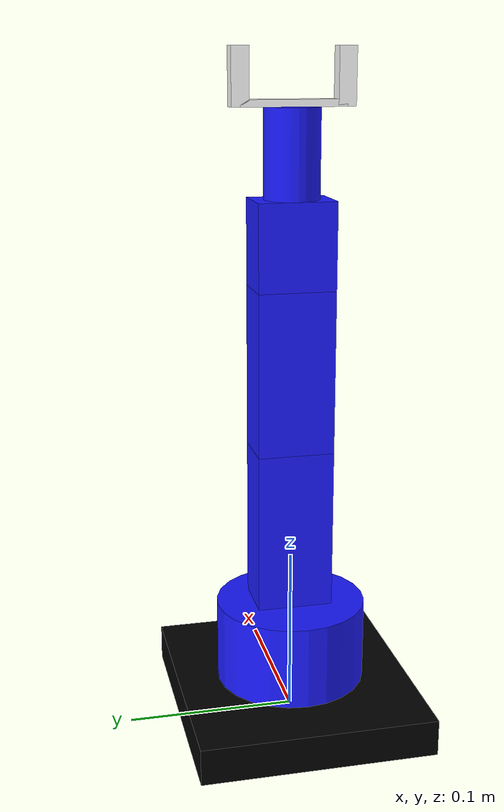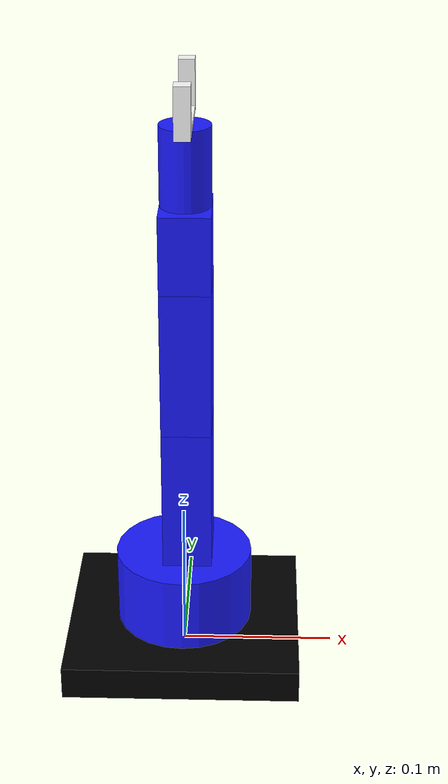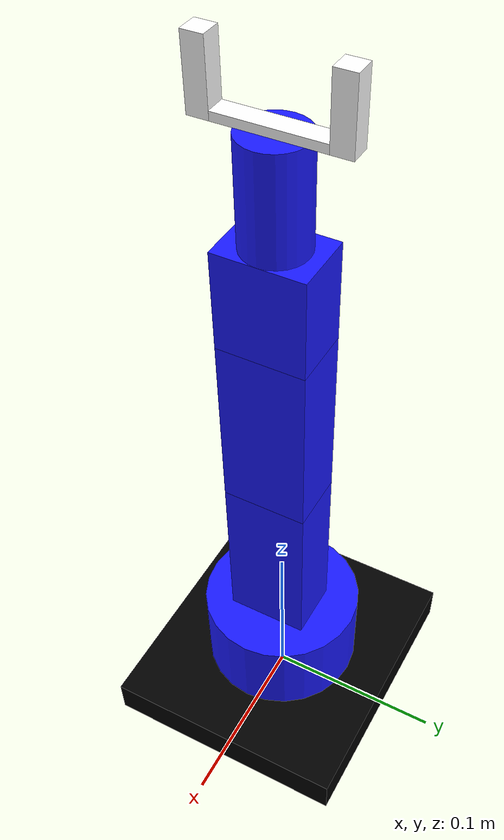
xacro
<?xml version="1.0"?>

<robot xmlns:xacro="http://www.ros.org/wiki/xacro" name="xarm">

  <!-- Define the colors used in this robot -->
  <material name="Black">
    <color rgba="0 0 0 1" />
  </material>

  <material name="White">
    <color rgba="1 1 1 1" />
  </material>

  <material name="Blue">
    <color rgba="0.1 0.1 1 1" />
  </material>

  <!-- base_link properties -->
  <xacro:property name="base_link_length" value="0.154" />
  <xacro:property name="base_link_width" value="0.14" />
  <xacro:property name="base_link_height" value="0.022" />
  <xacro:property name="base_link_geometry_origin">
    <geometry>
      <box size="${base_link_length} ${base_link_width} ${base_link_height}" />
    </geometry>
    <origin xyz="0 0 ${base_link_height/2}" rpy="0 0 0" />
  </xacro:property>

  <!-- arm_link1 properties -->
  <xacro:property name="arm_link1_length" value="0.05" />
  <xacro:property name="arm_link1_radius" value="0.045" />
  <xacro:property name="arm_link1_geometry_origin">
    <geometry>
      <cylinder length="${arm_link1_length}" radius="${arm_link1_radius}" />
    </geometry>
    <origin xyz="0 0 ${arm_link1_length/2}" rpy="0 0 0" />
  </xacro:property>

  <!-- arm_link2 properties -->
  <xacro:property name="arm_link2_length" value="0.032" />
  <xacro:property name="arm_link2_width" value="0.045" />
  <xacro:property name="arm_link2_height" value="0.096" />
  <xacro:property name="arm_link2_geometry_origin">
    <geometry>
      <box size="${arm_link2_length} ${arm_link2_width} ${arm_link2_height}" />
    </geometry>
    <origin xyz="0 0 ${arm_link2_height/2}" rpy="0 0 0" />
  </xacro:property>

  <!-- arm_link3 properties -->
  <xacro:property name="arm_link3_length" value="0.032" />
  <xacro:property name="arm_link3_width" value="0.045" />
  <xacro:property name="arm_link3_height" value="0.096" />
  <xacro:property name="arm_link3_geometry_origin">
    <geometry>
      <box size="${arm_link3_length} ${arm_link3_width} ${arm_link3_height}" />
    </geometry>
    <origin xyz="0 0 ${arm_link3_height/2}" rpy="0 0 0" />
  </xacro:property>

  <!-- arm_link4 properties -->
  <xacro:property name="arm_link4_length" value="0.032" />
  <xacro:property name="arm_link4_width" value="0.045" />
  <xacro:property name="arm_link4_height" value="0.05" />
  <xacro:property name="arm_link4_geometry_origin">
    <geometry>
      <box size="${arm_link4_length} ${arm_link4_width} ${arm_link4_height}" />
    </geometry>
    <origin rpy="0 0 0" xyz="0 0 ${arm_link4_height/2}" />
  </xacro:property>

  <!-- arm_link5 properties -->
  <xacro:property name="arm_link5_length" value="0.05" />
  <xacro:property name="arm_link5_radius" value="0.016" />
  <xacro:property name="arm_link5_geometry_origin">
    <geometry>
      <cylinder length="${arm_link5_length}" radius="${arm_link5_radius}" />
    </geometry>
    <origin xyz="0 0 ${arm_link5_length/2}" rpy="0 0 0" />
  </xacro:property>

  <!-- gripper_link properties -->
  <xacro:property name="gripper_link_length" value="0.01" />
  <xacro:property name="gripper_link_width" value="0.06" />
  <xacro:property name="gripper_link_height" value="0.004" />
  <xacro:property name="gripper_link_geometry_origin">
    <geometry>
      <box size="${gripper_link_length} ${gripper_link_width} ${gripper_link_height}" />
    </geometry>
    <origin xyz="0 0 ${gripper_link_height/2}" rpy="0 0 0" />
  </xacro:property>

  <!-- Gripper properties -->
  <xacro:property name="gripper_length" value="0.01" />
  <xacro:property name="gripper_width" value="0.01" />
  <xacro:property name="gripper_height" value="0.032" />
  <xacro:property name="gripper_geometry_origin">
    <geometry>
      <box size="${gripper_length} ${gripper_width} ${gripper_height}" />
    </geometry>
    <origin xyz="0 0 ${gripper_height/2}" rpy="0 0 0" />
  </xacro:property>

  <!--////////// BASE_LINK //////////-->
  <link name="base_link">
    <visual>
      <xacro:insert_block name="base_link_geometry_origin" />
      <material name="Black" />
    </visual>
    <collision>
      <xacro:insert_block name="base_link_geometry_origin" />
    </collision>
  </link>

  <!--////////// ARM_LINK1 //////////-->
  <link name="arm_link1">
    <visual>
      <xacro:insert_block name="arm_link1_geometry_origin" />
      <material name="Blue" />
    </visual>
    <collision>
      <xacro:insert_block name="arm_link1_geometry_origin" />
    </collision>
  </link>
  <joint name="arm_joint1" type="revolute">
    <origin xyz="0 0 ${base_link_height}" rpy="0 0 0" />
    <parent link="base_link" />
    <child link="arm_link1" />
    <axis xyz="0 0 1" />
    <limit lower="${-pi*2/3}" upper="${pi*2/3}" effort="16" velocity="2.5" />
  </joint>

  <!--////////// ARM_LINK2 //////////-->
  <link name="arm_link2">
    <visual>
      <xacro:insert_block name="arm_link2_geometry_origin" />
      <material name="Blue" />
    </visual>
    <collision>
      <xacro:insert_block name="arm_link2_geometry_origin" />
    </collision>
  </link>
  <joint name="arm_joint2" type="revolute">
    <origin xyz="0.003 0 ${arm_link1_length}" rpy="0 0 0" />
    <parent link="arm_link1" />
    <child link="arm_link2" />
    <axis xyz="0 1 0" />
    <limit lower="${-pi/2}" upper="${pi/2}" effort="16" velocity="2" />
  </joint>

  <!--////////// ARM_LINK3 //////////-->
  <link name="arm_link3">
    <visual>
      <xacro:insert_block name="arm_link3_geometry_origin" />
      <material name="Blue" />
    </visual>
    <collision>
      <xacro:insert_block name="arm_link3_geometry_origin" />
    </collision>
  </link>
  <joint name="arm_joint3" type="revolute">
    <origin xyz="0 0 ${arm_link2_height}" rpy="0 0 0" />
    <parent link="arm_link2" />
    <child link="arm_link3" />
    <axis xyz="0 1 0" />
    <limit lower="-2" upper="2" effort="16" velocity="2" />
  </joint>

  <!--////////// ARM_LINK4 //////////-->
  <link name="arm_link4">
    <visual>
      <xacro:insert_block name="arm_link4_geometry_origin" />
      <material name="Blue" />
    </visual>
    <collision>
      <xacro:insert_block name="arm_link4_geometry_origin" />
    </collision>
  </link>
  <joint name="arm_joint4" type="revolute">
    <origin xyz="0 0 ${arm_link3_height}" rpy="0 0 0" />
    <parent link="arm_link3" />
    <child link="arm_link4" />
    <axis xyz="0 1 0" />
    <limit lower="-2" upper="2" effort="16" velocity="2" />
  </joint>

  <!--////////// ARM_LINK5 //////////-->
  <link name="arm_link5">
    <visual>
      <xacro:insert_block name="arm_link5_geometry_origin" />
      <material name="Blue" />
    </visual>
    <collision>
      <xacro:insert_block name="arm_link5_geometry_origin" />
    </collision>
  </link>
  <joint name="arm_joint5" type="revolute">
    <origin xyz="0 0 ${arm_link4_height}" rpy="0 0 0" />
    <parent link="arm_link4" />
    <child link="arm_link5" />
    <axis xyz="0 0 1" />
    <limit lower="${-pi*2/3}" upper="${pi*2/3}" effort="16" velocity="2.5" />
  </joint>

  <!--////////// GRIPPER_LINK //////////-->
  <link name="gripper_link">
    <visual>
      <xacro:insert_block name="gripper_link_geometry_origin" />
      <material name="White" />
    </visual>
    <collision>
      <xacro:insert_block name="gripper_link_geometry_origin" />
    </collision>
  </link>
  <joint name="arm_to_gripper" type="fixed">
    <origin xyz="0 0 ${arm_link5_length}" rpy="0 0 0" />
    <parent link="arm_link5" />
    <child link="gripper_link" />
  </joint>

  <!--////////// LEFT_GRIPPER //////////-->
  <link name="left_gripper">
    <visual>
      <xacro:insert_block name="gripper_geometry_origin" />
      <material name="White" />
    </visual>
    <collision>
      <xacro:insert_block name="gripper_geometry_origin" />
    </collision>
  </link>
  <joint name="gripper_joint1" type="prismatic">
    <origin rpy="0 0 0" xyz="0 ${-gripper_link_width/2} 0" />
    <parent link="gripper_link" />
    <child link="left_gripper" />
    <axis xyz="0 1 0" />
    <limit lower="0" upper="0.025" effort="16" velocity="2" />
  </joint>

  <!--////////// RIGHT_GRIPPER //////////-->
  <link name="right_rigpper">
    <visual>
      <xacro:insert_block name="gripper_geometry_origin" />
      <material name="White" />
    </visual>
    <collision>
      <xacro:insert_block name="gripper_geometry_origin" />
    </collision>
  </link>
  <joint name="gripper_joint2" type="prismatic">
    <origin rpy="0 0 0" xyz="0 ${gripper_link_width/2} 0" />
    <parent link="gripper_link" />
    <child link="right_rigpper" />
    <axis xyz="0 1 0" />
    <limit lower="-0.025" upper="0" effort="16" velocity="2" />
  </joint>
</robot>
